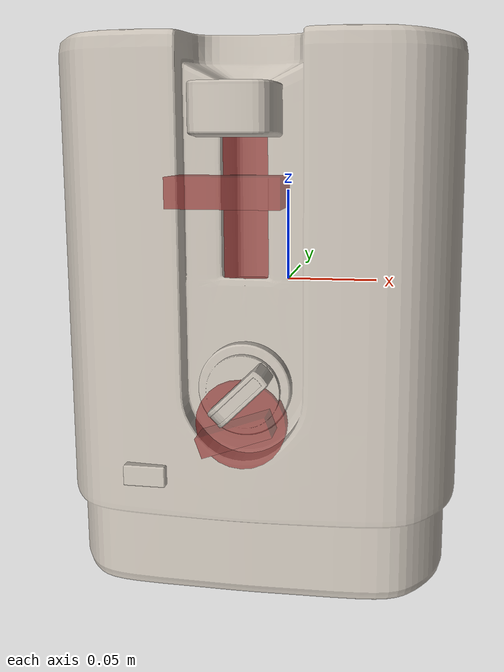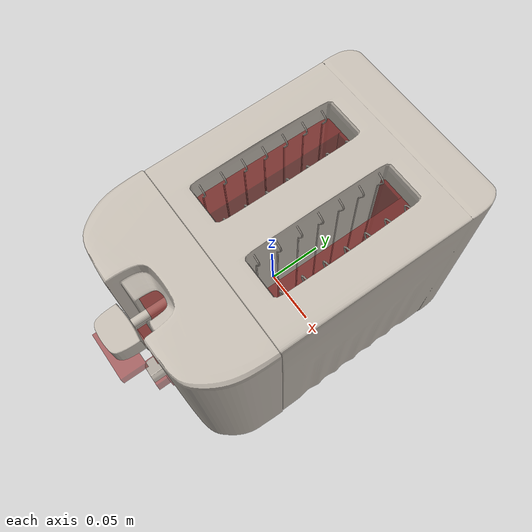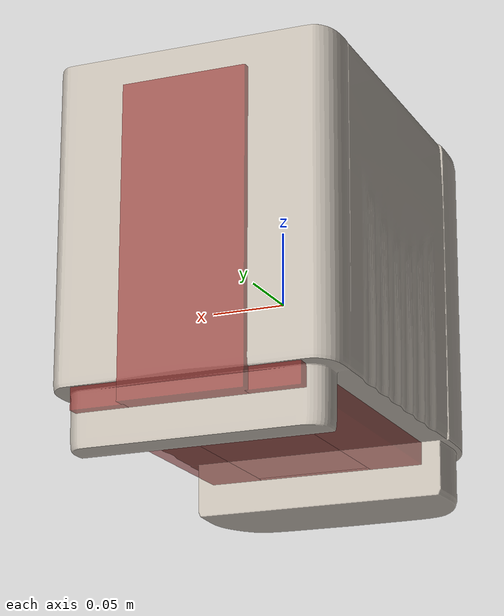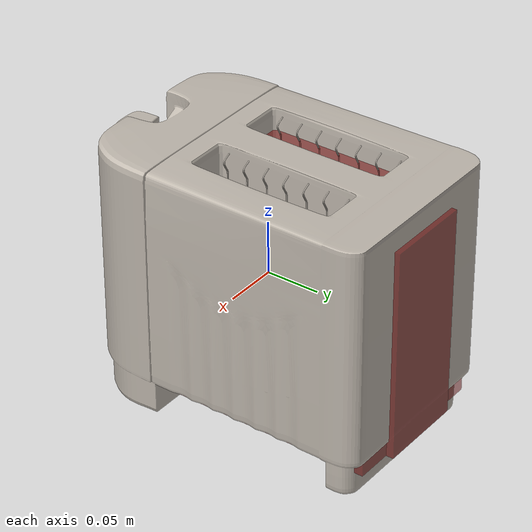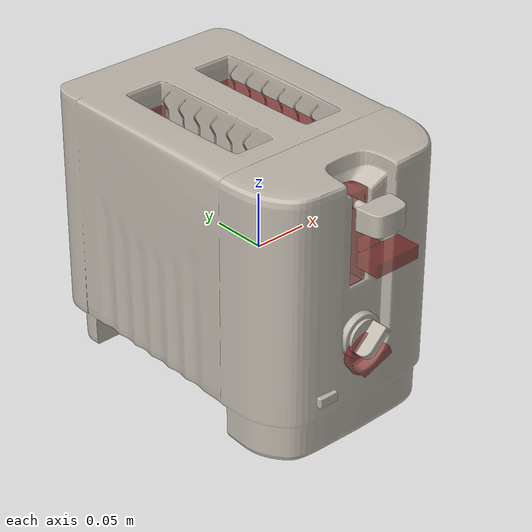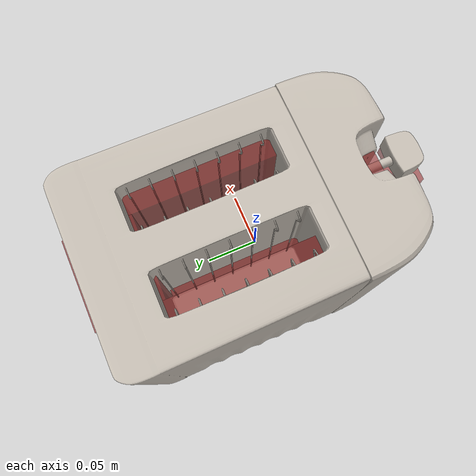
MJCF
<?xml version='1.0' encoding='UTF-8'?>
<mujoco model="model">
  <option timestep="0.002" gravity="0.0 0.0 -9.81"/>
  <compiler angle="radian"/>
  <asset>
    <mesh file="visuals/button_cancel.obj" name="button_cancel_vis"/>
    <mesh file="visuals/knob_doneness.obj" name="knob_doneness_vis"/>
    <mesh file="visuals/lever.obj" name="lever_vis"/>
    <mesh file="visuals/Body001.obj" name="Body001_vis"/>
    <mesh file="visuals/Body002.obj" name="Body002_vis"/>
    <texture file="visuals/T_BC001.png" name="Body001_material" type="2d"/>
    <material name="Body001_material" rgba="1 1 1 1.0" texture="Body001_material" shininess="0.4472135901451111" specular="0.3103448502657381"/>
    <texture file="visuals/T_BC001.png" name="button_cancel_material" type="2d"/>
    <material name="button_cancel_material" rgba="1 1 1 1.0" texture="button_cancel_material" shininess="0.4472135901451111" specular="0.3103448502657381"/>
    <texture file="visuals/T_BC001.png" name="knob_doneness_material" type="2d"/>
    <material name="knob_doneness_material" rgba="1 1 1 1.0" texture="knob_doneness_material" shininess="0.4472135901451111" specular="0.3103448502657381"/>
    <texture file="visuals/T_BC001.png" name="lever_material" type="2d"/>
    <material name="lever_material" rgba="1 1 1 1.0" texture="lever_material" shininess="0.4472135901451111" specular="0.3103448502657381"/>
    <texture file="visuals/T_BC001.png" name="Body002_material" type="2d"/>
    <material name="Body002_material" rgba="1 1 1 1.0" texture="Body002_material" shininess="0.4472135901451111" specular="3"/>
  </asset>
  <default>
    <default class="visual">
      <geom conaffinity="0" contype="0" group="1" type="mesh"/>
    </default>
    <default class="collision_1">
      <geom group="0" rgba="0.5 0 0 0.5" solref="0.004 1" solimp="0.998 0.998 0.001"/>
    </default>
    <default class="collision_2">
      <geom group="0" rgba="0.5 0 0 0.5" solref="0.004 1" solimp="0.998 0.998 0.001"/>
    </default>
    <default class="collision_3">
      <geom group="0" rgba="0.5 0 0 0.5" solref="0.004 1" solimp="0.998 0.998 0.001"/>
    </default>
    <default class="collision_4">
      <geom group="0" rgba="0.5 0 0 0.5" solref="0.004 1" solimp="0.998 0.998 0.001"/>
    </default>
    <default class="collision_5">
      <geom group="0" rgba="0.5 0 0 0.5" solref="0.004 1" solimp="0.998 0.998 0.001"/>
    </default>
    <default class="spawn">
      <geom group="0" rgba="1 1 1 0.5" contype="0" conaffinity="0"/>
      <site group="0" rgba="1 1 1 0.5"/>
    </default>
    <default class="region">
      <geom group="1" conaffinity="0" contype="0" rgba="0 1 0 0" mass="0"/>
    </default>
  </default>
  <worldbody>
    <body>
      <body name="object">
        <geom mesh="Body001_vis" type="mesh" solimp="0.998 0.998 0.001" solref="0.001 1" friction="0.95 0.3 0.1" class="visual" material="Body001_material"/>
        <geom type="box" pos="-0.055946242064237595 0.021821707487106323 7.450580596923828e-09" size="0.017723383381962776 0.1287723183631897 0.10059751570224762" quat="1.0 0.0 0.0 0.0" class="collision_1"/>
        <geom type="box" pos="0.057172831147909164 0.021125435829162598 7.450580596923828e-09" size="0.017723383381962776 0.12946851551532745 0.10059745609760284" quat="1.0 0.0 0.0 0.0" class="collision_1"/>
        <geom type="box" pos="-4.952516174938637e-09 0.1272965669631958 7.450580596923828e-09" size="0.04071595519781113 0.030456967651844025 0.10059739649295807" quat="1.0 0.0 0.0 0.0" class="collision_1"/>
        <geom type="box" pos="3.703138906629988e-09 -0.0829356387257576 7.450580596923828e-09" size="0.04071595147252083 0.03092188946902752 0.10059686750173569" quat="1.0 0.0 0.0 0.0" class="collision_1"/>
        <geom type="box" pos="-3.690570349323963e-10 0.022439245134592056 0.02093360759317875" size="0.006363640073686838 0.07561708241701126 0.07569602876901627" quat="1.0 0.0 0.0 0.0" class="collision_1"/>
        <geom type="box" pos="9.078436891130082e-10 -0.006772836670279503 -0.07402293384075165" size="0.04040299728512764 0.10382997244596481 0.026396626606583595" quat="1.0 0.0 0.0 0.0" class="collision_1"/>
        <body name="button_cancel">
          <joint axis="0.4370834231376648 0.8994210362434387 0.0" pos="-0.048416655510663986 -0.11593509465456009 -0.019691836088895798" limited="true" name="button_cancel_joint" range="0.0 0.001" type="slide" damping="1" frictionloss="1" armature=".01" stiffness="4" springref="-1"/>
          <geom mesh="button_cancel_vis" type="mesh" solimp="0.998 0.998 0.001" solref="0.001 1" friction="0.95 0.3 0.1" class="visual" material="button_cancel_material"/>
          <geom class="collision_2" type="box" pos="-0.04771571233868599 -0.11617827415466309 -0.019709717482328415" size="0.009501594118773937 0.002825995208695531 0.003922949079424143" quat="0.9681476354598999 0.0 0.0 -0.2503799796104431" name="button_cancel_main"/>
        </body>
        <body name="knob_doneness">
          <joint axis="0.0 1.0 0.0" pos="1.638755202293396e-05 -0.13269715011119843 -0.04218493774533272" limited="true" name="knob_doneness_joint" range="0.0 4.101523742186674" type="hinge" damping="0.05" armature="1" frictionloss="0.75"/>
          <geom mesh="knob_doneness_vis" type="mesh" solimp="0.998 0.998 0.001" solref="0.001 1" friction="0.95 0.3 0.1" class="visual" material="knob_doneness_material"/>
          <geom type="cylinder" pos="-0.00023147495812736452 -0.12644612789154053 -0.041845038533210754" size="0.01947701908648014 0.003175688674673438" quat="0.6946583986282349 0.7193397879600525 0.0 0.0" class="collision_3" friction="100 0.5 0.01"/>
          <geom class="collision_3" type="box" pos="-0.0006442344165407121 -0.13251668214797974 -0.043026115745306015" size="0.004428433254361153 0.009646240621805191 0.01562546379864216" quat="0.57569819688797 -0.0 -0.8176622986793518 -0.0" name="knob_doneness_main" friction="100 0.5 0.01"/>
        </body>
        <body name="lever">
          <joint axis="0.0 0.0 -1.0" pos="0.0 -0.12861935794353485 0.05759614333510399" limited="true" name="lever_joint" range="0.0 0.06" type="slide" damping="1" frictionloss="1" armature=".1" stiffness="4.3" springref="-0.5"/>
          <geom class="region" name="reg_slotL" type="box" pos="-0.022260630503296852 0.022926490753889084 0.10001123696565628" size="0.015137452468276025 0.07418171486258507 0.07599996572732926"/>
          <geom class="region" name="reg_slotR" type="box" pos="0.022318080067634583 0.022926490753889084 0.10001123696565628" size="0.015404546469449998 0.07418171486258507 0.07599996572732926"/>
          <geom mesh="lever_vis" type="mesh" solimp="0.998 0.998 0.001" solref="0.001 1" friction="0.95 0.3 0.1" class="visual" material="lever_material"/>
          <geom class="collision_4" type="box" pos="-9.033897367771715e-05 -0.1474333107471466 0.05777434632182121" size="0.022096822038292885 0.011113028042018414 0.005966719705611467" quat="1.0 0.0 0.0 0.0" name="lever_handle"/>
          <geom type="box" pos="-1.2785009426738003e-17 -0.1285804957151413 0.057578571140766144" size="0.005304453428834677 0.009310588240623474 0.005593227222561836" quat="1.0 0.0 0.0 0.0" class="collision_4"/>
          <geom class="collision_4" type="box" pos="-0.02235770970582962 0.023186175152659416 0.02045106515288353" size="0.01266517024487257 0.07211378961801529 0.003379613859578967" quat="1.0 0.0 0.0 0.0" name="slotL_floor"/>
          <geom class="collision_4" type="box" pos="0.021620038896799088 0.023186175152659416 0.02045106515288353" size="0.01266517024487257 0.07211378961801529 0.003379613859578967" quat="1.0 0.0 0.0 0.0" name="slotR_floor"/>
        </body>
        <body name="Body002">
          <geom mesh="Body002_vis" type="mesh" solimp="0.998 0.998 0.001" solref="0.001 1" friction="0.95 0.3 0.1" class="visual" material="Body002_material"/>
        </body>
        <geom class="region" name="reg_main" type="box" pos="0.0 0.013944357633590698 0.0" size="0.07378843224048615 0.145669309258461 0.10047514533996582"/>
      </body>
    </body>
  </worldbody>
  <actuator>
    <motor name="button_cancel_joint_actuator" joint="button_cancel_joint" gear="0.5"/>
    <motor name="knob_doneness_joint_actuator" joint="knob_doneness_joint" gear="10"/>
    <motor name="lever_joint_actuator" joint="lever_joint" gear="1.5"/>
  </actuator>
</mujoco>
